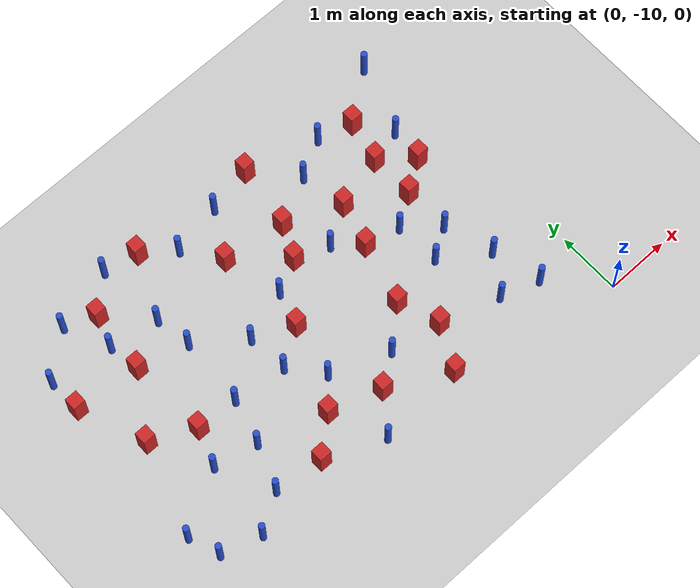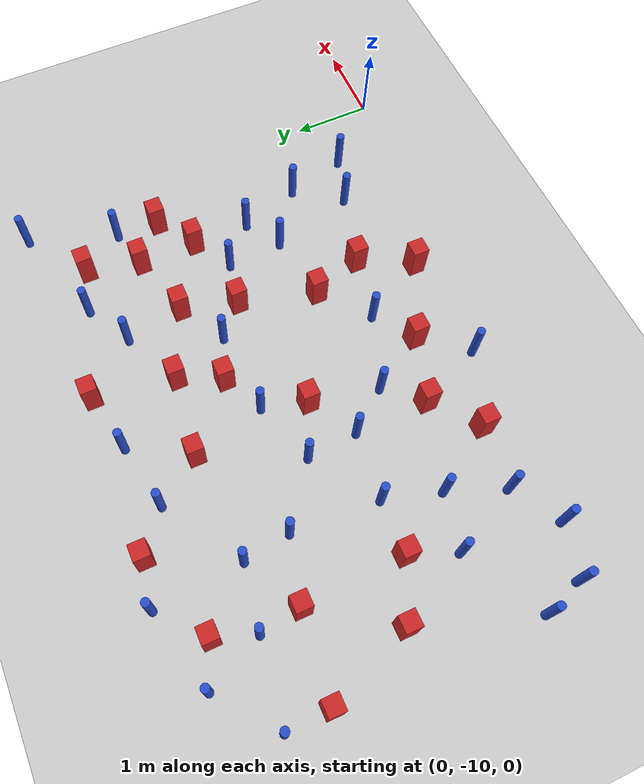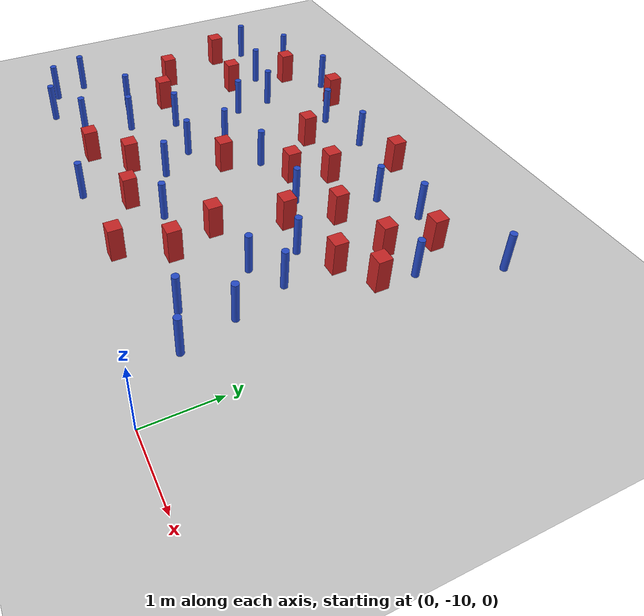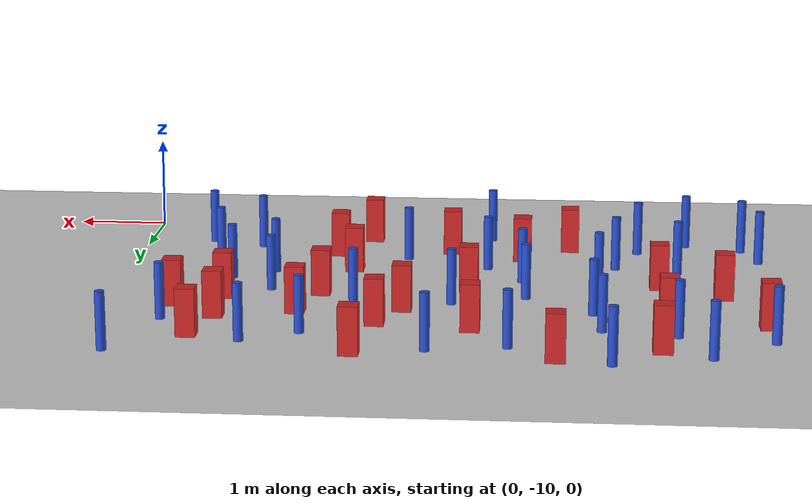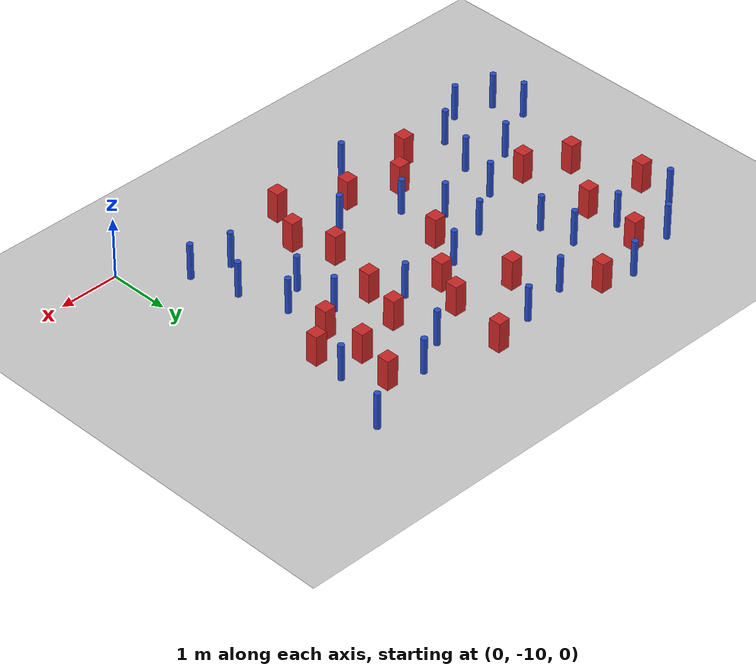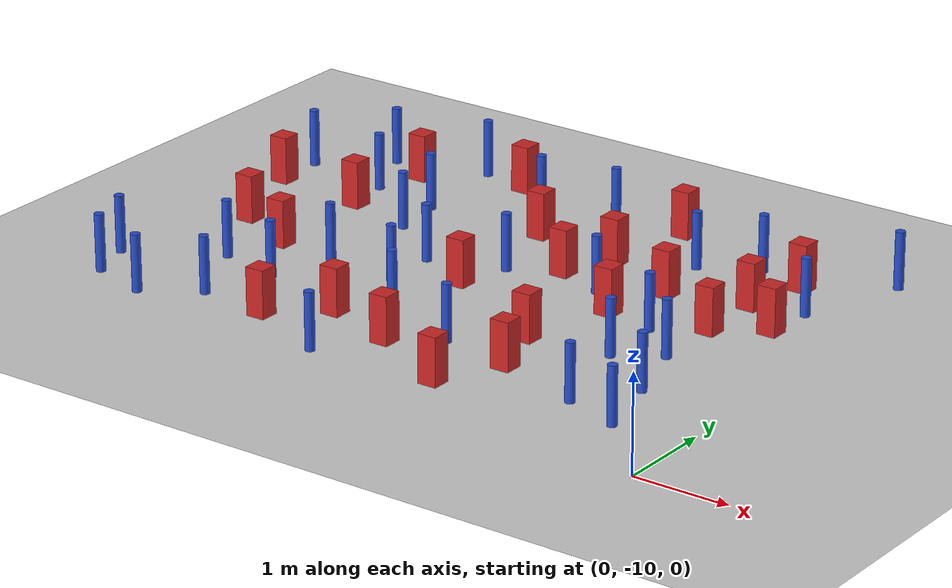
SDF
<sdf version="1.6">
 <world name="default">
  <model name="ground_plane">
   <static>1</static>
   <link name="link">
    <collision name="collision">
     <geometry><plane><normal>0 0 1</normal><size>100 100</size></plane></geometry>
     <surface><friction><ode><mu>100</mu><mu2>50</mu2></ode></friction></surface>
    </collision>
    <visual name="visual">
     <cast_shadows>0</cast_shadows>
     <geometry><plane><normal>0 0 1</normal><size>100 100</size></plane></geometry>
     <material>
      <ambient>1.0 1.0 1.0 1.0</ambient>
      <diffuse>0.8 0.8 0.8 1.0</diffuse>
      <specular>0.01 0.01 0.01 1.000000</specular>
     </material>
    </visual>
   </link>
  </model>
  <model name="pole_obstacle1">
   <static>true</static>
   <pose>-1.18250844846 -7.70387494686 2.88873142074e-08 -9.90536689852e-09 4.60219948989e-07 -1.2096599496e-07</pose>
   <link name="link">
    <pose>0 0 0.3 0 -0 0</pose>
    <inertial>
     <mass>1</mass>
     <inertia><ixx>0.145833</ixx><ixy>0</ixy><ixz>0</ixz><iyy>0.145833</iyy><iyz>0</iyz><izz>0.125</izz></inertia>
    </inertial>
    <collision name="collision">
     <geometry><cylinder><radius>0.05</radius><length>.6</length></cylinder></geometry>
    </collision>
    <visual name="visual">
     <geometry><cylinder><radius>0.05</radius><length>.6</length></cylinder></geometry>
     <material>
      <script><name>Gazebo/Blue</name><uri>file://media/materials/scripts/gazebo.material</uri></script>
     </material>
    </visual>
   </link>
  </model>
  <model name="square_post_obstacle3">
   <static>true</static>
   <pose>-1.03680972441 -5.58593640576 8.22691968438e-08 7.2212513382e-06 -7.54495500217e-07 2.29674213826e-05</pose>
   <link name="link">
    <pose>0 0 0.25 0 -0 0</pose>
    <inertial>
     <mass>100</mass>
     <inertia>
      <ixx>0.166667</ixx>
      <ixy>0</ixy>
      <ixz>0</ixz>
      <iyy>0.166667</iyy>
      <iyz>0</iyz>
      <izz>0.166667</izz>
     </inertia>
    </inertial>
    <collision name="collision"><geometry><box><size>.2 .2 .5</size></box></geometry></collision>
    <visual name="visual">
     <geometry><box><size>.2 .2 .5</size></box></geometry>
     <material>
      <script><name>Gazebo/Red</name><uri>file://media/materials/scripts/gazebo.material</uri></script>
     </material>
    </visual>
   </link>
  </model>
  <model name="pole_obstacle2">
   <static>true</static>
   <pose>-5.35833952986 -8.33656841699 2.88873142074e-08 -9.9053668967e-09 4.60219948993e-07 -1.20965994957e-07</pose>
   <link name="link">
    <pose>0 0 0.3 0 -0 0</pose>
    <inertial>
     <mass>1</mass>
     <inertia><ixx>0.145833</ixx><ixy>0</ixy><ixz>0</ixz><iyy>0.145833</iyy><iyz>0</iyz><izz>0.125</izz></inertia>
    </inertial>
    <collision name="collision">
     <geometry><cylinder><radius>0.05</radius><length>.6</length></cylinder></geometry>
    </collision>
    <visual name="visual">
     <geometry><cylinder><radius>0.05</radius><length>.6</length></cylinder></geometry>
     <material>
      <script><name>Gazebo/Blue</name><uri>file://media/materials/scripts/gazebo.material</uri></script>
     </material>
    </visual>
   </link>
  </model>
  <model name="pole_obstacle5">
   <static>true</static>
   <pose>-1.66406877257 -7.27643636776 2.88873142074e-08 -9.90536689852e-09 4.60219948989e-07 -1.2096599496e-07</pose>
   <link name="link">
    <pose>0 0 0.3 0 -0 0</pose>
    <inertial>
     <mass>1</mass>
     <inertia><ixx>0.145833</ixx><ixy>0</ixy><ixz>0</ixz><iyy>0.145833</iyy><iyz>0</iyz><izz>0.125</izz></inertia>
    </inertial>
    <collision name="collision">
     <geometry><cylinder><radius>0.05</radius><length>.6</length></cylinder></geometry>
    </collision>
    <visual name="visual">
     <geometry><cylinder><radius>0.05</radius><length>.6</length></cylinder></geometry>
     <material>
      <script><name>Gazebo/Blue</name><uri>file://media/materials/scripts/gazebo.material</uri></script>
     </material>
    </visual>
   </link>
  </model>
  <model name="square_post_obstacle16">
   <static>true</static>
   <pose>-4.71330819208 -5.01997671932 8.22691968438e-08 7.2212513382e-06 -7.54495500217e-07 2.29674213826e-05</pose>
   <link name="link">
    <pose>0 0 0.25 0 -0 0</pose>
    <inertial>
     <mass>100</mass>
     <inertia>
      <ixx>0.166667</ixx>
      <ixy>0</ixy>
      <ixz>0</ixz>
      <iyy>0.166667</iyy>
      <iyz>0</iyz>
      <izz>0.166667</izz>
     </inertia>
    </inertial>
    <collision name="collision"><geometry><box><size>.2 .2 .5</size></box></geometry></collision>
    <visual name="visual">
     <geometry><box><size>.2 .2 .5</size></box></geometry>
     <material>
      <script><name>Gazebo/Red</name><uri>file://media/materials/scripts/gazebo.material</uri></script>
     </material>
    </visual>
   </link>
  </model>
  <model name="square_post_obstacle19">
   <static>true</static>
   <pose>-1.20047073616 -6.24779284353 8.22691968438e-08 7.2212513382e-06 -7.54495500217e-07 2.29674213826e-05</pose>
   <link name="link">
    <pose>0 0 0.25 0 -0 0</pose>
    <inertial>
     <mass>100</mass>
     <inertia>
      <ixx>0.166667</ixx>
      <ixy>0</ixy>
      <ixz>0</ixz>
      <iyy>0.166667</iyy>
      <iyz>0</iyz>
      <izz>0.166667</izz>
     </inertia>
    </inertial>
    <collision name="collision"><geometry><box><size>.2 .2 .5</size></box></geometry></collision>
    <visual name="visual">
     <geometry><box><size>.2 .2 .5</size></box></geometry>
     <material>
      <script><name>Gazebo/Red</name><uri>file://media/materials/scripts/gazebo.material</uri></script>
     </material>
    </visual>
   </link>
  </model>
  <model name="square_post_obstacle20">
   <static>true</static>
   <pose>-5.80783486104 -7.61061813512 8.22691968438e-08 7.22125133819e-06 -7.54495500217e-07 2.29674213826e-05</pose>
   <link name="link">
    <pose>0 0 0.25 0 -0 0</pose>
    <inertial>
     <mass>100</mass>
     <inertia>
      <ixx>0.166667</ixx>
      <ixy>0</ixy>
      <ixz>0</ixz>
      <iyy>0.166667</iyy>
      <iyz>0</iyz>
      <izz>0.166667</izz>
     </inertia>
    </inertial>
    <collision name="collision"><geometry><box><size>.2 .2 .5</size></box></geometry></collision>
    <visual name="visual">
     <geometry><box><size>.2 .2 .5</size></box></geometry>
     <material>
      <script><name>Gazebo/Red</name><uri>file://media/materials/scripts/gazebo.material</uri></script>
     </material>
    </visual>
   </link>
  </model>
  <model name="square_post_obstacle27">
   <static>true</static>
   <pose>-2.2161021333 -7.15034181446 8.22691968438e-08 7.2212513382e-06 -7.54495500217e-07 2.29674213826e-05</pose>
   <link name="link">
    <pose>0 0 0.25 0 -0 0</pose>
    <inertial>
     <mass>100</mass>
     <inertia>
      <ixx>0.166667</ixx>
      <ixy>0</ixy>
      <ixz>0</ixz>
      <iyy>0.166667</iyy>
      <iyz>0</iyz>
      <izz>0.166667</izz>
     </inertia>
    </inertial>
    <collision name="collision"><geometry><box><size>.2 .2 .5</size></box></geometry></collision>
    <visual name="visual">
     <geometry><box><size>.2 .2 .5</size></box></geometry>
     <material>
      <script><name>Gazebo/Red</name><uri>file://media/materials/scripts/gazebo.material</uri></script>
     </material>
    </visual>
   </link>
  </model>
  <model name="pole_obstacle28">
   <static>true</static>
   <pose>-3.44101071613 -5.23831366577 2.88873142074e-08 -9.90536689859e-09 4.60219948989e-07 -1.20965994961e-07</pose>
   <link name="link">
    <pose>0 0 0.3 0 -0 0</pose>
    <inertial>
     <mass>1</mass>
     <inertia><ixx>0.145833</ixx><ixy>0</ixy><ixz>0</ixz><iyy>0.145833</iyy><iyz>0</iyz><izz>0.125</izz></inertia>
    </inertial>
    <collision name="collision">
     <geometry><cylinder><radius>0.05</radius><length>.6</length></cylinder></geometry>
    </collision>
    <visual name="visual">
     <geometry><cylinder><radius>0.05</radius><length>.6</length></cylinder></geometry>
     <material>
      <script><name>Gazebo/Blue</name><uri>file://media/materials/scripts/gazebo.material</uri></script>
     </material>
    </visual>
   </link>
  </model>
  <model name="pole_obstacle32">
   <static>true</static>
   <pose>-0.292960993076 -5.03104009301 2.88873142074e-08 -9.90536689618e-09 4.60219948994e-07 -1.20965994956e-07</pose>
   <link name="link">
    <pose>0 0 0.3 0 -0 0</pose>
    <inertial>
     <mass>1</mass>
     <inertia><ixx>0.145833</ixx><ixy>0</ixy><ixz>0</ixz><iyy>0.145833</iyy><iyz>0</iyz><izz>0.125</izz></inertia>
    </inertial>
    <collision name="collision">
     <geometry><cylinder><radius>0.05</radius><length>.6</length></cylinder></geometry>
    </collision>
    <visual name="visual">
     <geometry><cylinder><radius>0.05</radius><length>.6</length></cylinder></geometry>
     <material>
      <script><name>Gazebo/Blue</name><uri>file://media/materials/scripts/gazebo.material</uri></script>
     </material>
    </visual>
   </link>
  </model>
  <model name="square_post_obstacle37">
   <static>true</static>
   <pose>-4.85473107737 -9.11008696046 8.22691968438e-08 7.22125133819e-06 -7.54495500217e-07 2.29674213826e-05</pose>
   <link name="link">
    <pose>0 0 0.25 0 -0 0</pose>
    <inertial>
     <mass>100</mass>
     <inertia>
      <ixx>0.166667</ixx>
      <ixy>0</ixy>
      <ixz>0</ixz>
      <iyy>0.166667</iyy>
      <iyz>0</iyz>
      <izz>0.166667</izz>
     </inertia>
    </inertial>
    <collision name="collision"><geometry><box><size>.2 .2 .5</size></box></geometry></collision>
    <visual name="visual">
     <geometry><box><size>.2 .2 .5</size></box></geometry>
     <material>
      <script><name>Gazebo/Red</name><uri>file://media/materials/scripts/gazebo.material</uri></script>
     </material>
    </visual>
   </link>
  </model>
  <model name="square_post_obstacle39">
   <static>true</static>
   <pose>-2.59815745295 -9.41556099096 8.22691968438e-08 7.22125133819e-06 -7.54495500217e-07 2.29674213826e-05</pose>
   <link name="link">
    <pose>0 0 0.25 0 -0 0</pose>
    <inertial>
     <mass>100</mass>
     <inertia>
      <ixx>0.166667</ixx>
      <ixy>0</ixy>
      <ixz>0</ixz>
      <iyy>0.166667</iyy>
      <iyz>0</iyz>
      <izz>0.166667</izz>
     </inertia>
    </inertial>
    <collision name="collision"><geometry><box><size>.2 .2 .5</size></box></geometry></collision>
    <visual name="visual">
     <geometry><box><size>.2 .2 .5</size></box></geometry>
     <material>
      <script><name>Gazebo/Red</name><uri>file://media/materials/scripts/gazebo.material</uri></script>
     </material>
    </visual>
   </link>
  </model>
  <model name="square_post_obstacle45">
   <static>true</static>
   <pose>-2.26393041456 -8.75168600667 8.22691968438e-08 7.22125133819e-06 -7.54495500217e-07 2.29674213826e-05</pose>
   <link name="link">
    <pose>0 0 0.25 0 -0 0</pose>
    <inertial>
     <mass>100</mass>
     <inertia>
      <ixx>0.166667</ixx>
      <ixy>0</ixy>
      <ixz>0</ixz>
      <iyy>0.166667</iyy>
      <iyz>0</iyz>
      <izz>0.166667</izz>
     </inertia>
    </inertial>
    <collision name="collision"><geometry><box><size>.2 .2 .5</size></box></geometry></collision>
    <visual name="visual">
     <geometry><box><size>.2 .2 .5</size></box></geometry>
     <material>
      <script><name>Gazebo/Red</name><uri>file://media/materials/scripts/gazebo.material</uri></script>
     </material>
    </visual>
   </link>
  </model>
  <model name="square_post_obstacle54">
   <static>true</static>
   <pose>-3.52671387951 -8.92941724615 8.22691968438e-08 7.22125133819e-06 -7.54495500217e-07 2.29674213826e-05</pose>
   <link name="link">
    <pose>0 0 0.25 0 -0 0</pose>
    <inertial>
     <mass>100</mass>
     <inertia>
      <ixx>0.166667</ixx>
      <ixy>0</ixy>
      <ixz>0</ixz>
      <iyy>0.166667</iyy>
      <iyz>0</iyz>
      <izz>0.166667</izz>
     </inertia>
    </inertial>
    <collision name="collision"><geometry><box><size>.2 .2 .5</size></box></geometry></collision>
    <visual name="visual">
     <geometry><box><size>.2 .2 .5</size></box></geometry>
     <material>
      <script><name>Gazebo/Red</name><uri>file://media/materials/scripts/gazebo.material</uri></script>
     </material>
    </visual>
   </link>
  </model>
  <model name="pole_obstacle52">
   <static>true</static>
   <pose>-3.04835141107 -8.60038821178 2.88873142074e-08 -9.9053668994e-09 4.60219948987e-07 -1.20965994963e-07</pose>
   <link name="link">
    <pose>0 0 0.3 0 -0 0</pose>
    <inertial>
     <mass>1</mass>
     <inertia><ixx>0.145833</ixx><ixy>0</ixy><ixz>0</ixz><iyy>0.145833</iyy><iyz>0</iyz><izz>0.125</izz></inertia>
    </inertial>
    <collision name="collision">
     <geometry><cylinder><radius>0.05</radius><length>.6</length></cylinder></geometry>
    </collision>
    <visual name="visual">
     <geometry><cylinder><radius>0.05</radius><length>.6</length></cylinder></geometry>
     <material>
      <script><name>Gazebo/Blue</name><uri>file://media/materials/scripts/gazebo.material</uri></script>
     </material>
    </visual>
   </link>
  </model>
  <model name="square_post_obstacle61">
   <static>true</static>
   <pose>-6.86570901039 -6.23992069179 8.22691968438e-08 7.22125133819e-06 -7.54495500217e-07 2.29674213826e-05</pose>
   <link name="link">
    <pose>0 0 0.25 0 -0 0</pose>
    <inertial>
     <mass>100</mass>
     <inertia>
      <ixx>0.166667</ixx>
      <ixy>0</ixy>
      <ixz>0</ixz>
      <iyy>0.166667</iyy>
      <iyz>0</iyz>
      <izz>0.166667</izz>
     </inertia>
    </inertial>
    <collision name="collision"><geometry><box><size>.2 .2 .5</size></box></geometry></collision>
    <visual name="visual">
     <geometry><box><size>.2 .2 .5</size></box></geometry>
     <material>
      <script><name>Gazebo/Red</name><uri>file://media/materials/scripts/gazebo.material</uri></script>
     </material>
    </visual>
   </link>
  </model>
  <model name="pole_obstacle77">
   <static>true</static>
   <pose>-4.39026461238 -7.1158846359 2.88873142074e-08 -9.90536690842e-09 4.60219948965e-07 -1.20965994976e-07</pose>
   <link name="link">
    <pose>0 0 0.3 0 -0 0</pose>
    <inertial>
     <mass>1</mass>
     <inertia><ixx>0.145833</ixx><ixy>0</ixy><ixz>0</ixz><iyy>0.145833</iyy><iyz>0</iyz><izz>0.125</izz></inertia>
    </inertial>
    <collision name="collision">
     <geometry><cylinder><radius>0.05</radius><length>.6</length></cylinder></geometry>
    </collision>
    <visual name="visual">
     <geometry><cylinder><radius>0.05</radius><length>.6</length></cylinder></geometry>
     <material>
      <script><name>Gazebo/Blue</name><uri>file://media/materials/scripts/gazebo.material</uri></script>
     </material>
    </visual>
   </link>
  </model>
  <model name="pole_obstacle94">
   <static>true</static>
   <pose>-5.62100089339 -9.0195225706 2.88873142074e-08 -9.9053668967e-09 4.60219948993e-07 -1.20965994957e-07</pose>
   <link name="link">
    <pose>0 0 0.3 0 -0 0</pose>
    <inertial>
     <mass>1</mass>
     <inertia><ixx>0.145833</ixx><ixy>0</ixy><ixz>0</ixz><iyy>0.145833</iyy><iyz>0</iyz><izz>0.125</izz></inertia>
    </inertial>
    <collision name="collision">
     <geometry><cylinder><radius>0.05</radius><length>.6</length></cylinder></geometry>
    </collision>
    <visual name="visual">
     <geometry><cylinder><radius>0.05</radius><length>.6</length></cylinder></geometry>
     <material>
      <script><name>Gazebo/Blue</name><uri>file://media/materials/scripts/gazebo.material</uri></script>
     </material>
    </visual>
   </link>
  </model>
  <model name="pole_obstacle98">
   <static>true</static>
   <pose>-1.58052555916 -5.42955902011 2.88873142074e-08 -9.90536689852e-09 4.60219948989e-07 -1.2096599496e-07</pose>
   <link name="link">
    <pose>0 0 0.3 0 -0 0</pose>
    <inertial>
     <mass>1</mass>
     <inertia><ixx>0.145833</ixx><ixy>0</ixy><ixz>0</ixz><iyy>0.145833</iyy><iyz>0</iyz><izz>0.125</izz></inertia>
    </inertial>
    <collision name="collision">
     <geometry><cylinder><radius>0.05</radius><length>.6</length></cylinder></geometry>
    </collision>
    <visual name="visual">
     <geometry><cylinder><radius>0.05</radius><length>.6</length></cylinder></geometry>
     <material>
      <script><name>Gazebo/Blue</name><uri>file://media/materials/scripts/gazebo.material</uri></script>
     </material>
    </visual>
   </link>
  </model>
  <model name="pole_obstacle100">
   <static>true</static>
   <pose>-4.24383951142 -5.39093647528 2.88873142074e-08 -9.90536690842e-09 4.60219948965e-07 -1.20965994976e-07</pose>
   <link name="link">
    <pose>0 0 0.3 0 -0 0</pose>
    <inertial>
     <mass>1</mass>
     <inertia><ixx>0.145833</ixx><ixy>0</ixy><ixz>0</ixz><iyy>0.145833</iyy><iyz>0</iyz><izz>0.125</izz></inertia>
    </inertial>
    <collision name="collision">
     <geometry><cylinder><radius>0.05</radius><length>.6</length></cylinder></geometry>
    </collision>
    <visual name="visual">
     <geometry><cylinder><radius>0.05</radius><length>.6</length></cylinder></geometry>
     <material>
      <script><name>Gazebo/Blue</name><uri>file://media/materials/scripts/gazebo.material</uri></script>
     </material>
    </visual>
   </link>
  </model>
  <model name="pole_obstacle105">
   <static>true</static>
   <pose>-3.61673306404 -6.86107048801 2.88873142074e-08 -9.90536692062e-09 4.60219948937e-07 -1.20965994985e-07</pose>
   <link name="link">
    <pose>0 0 0.3 0 -0 0</pose>
    <inertial>
     <mass>1</mass>
     <inertia><ixx>0.145833</ixx><ixy>0</ixy><ixz>0</ixz><iyy>0.145833</iyy><iyz>0</iyz><izz>0.125</izz></inertia>
    </inertial>
    <collision name="collision">
     <geometry><cylinder><radius>0.05</radius><length>.6</length></cylinder></geometry>
    </collision>
    <visual name="visual">
     <geometry><cylinder><radius>0.05</radius><length>.6</length></cylinder></geometry>
     <material>
      <script><name>Gazebo/Blue</name><uri>file://media/materials/scripts/gazebo.material</uri></script>
     </material>
    </visual>
   </link>
  </model>
  <model name="square_post_obstacle94">
   <static>true</static>
   <pose>-2.0203740285 -6.46726550421 8.22691968438e-08 7.22125133819e-06 -7.54495500217e-07 2.29674213826e-05</pose>
   <link name="link">
    <pose>0 0 0.25 0 -0 0</pose>
    <inertial>
     <mass>100</mass>
     <inertia>
      <ixx>0.166667</ixx>
      <ixy>0</ixy>
      <ixz>0</ixz>
      <iyy>0.166667</iyy>
      <iyz>0</iyz>
      <izz>0.166667</izz>
     </inertia>
    </inertial>
    <collision name="collision"><geometry><box><size>.2 .2 .5</size></box></geometry></collision>
    <visual name="visual">
     <geometry><box><size>.2 .2 .5</size></box></geometry>
     <material>
      <script><name>Gazebo/Red</name><uri>file://media/materials/scripts/gazebo.material</uri></script>
     </material>
    </visual>
   </link>
  </model>
  <model name="square_post_obstacle102">
   <static>true</static>
   <pose>-4.3223314083 -8.66030648608 8.22691968438e-08 7.22125133819e-06 -7.54495500217e-07 2.29674213826e-05</pose>
   <link name="link">
    <pose>0 0 0.25 0 -0 0</pose>
    <inertial>
     <mass>100</mass>
     <inertia>
      <ixx>0.166667</ixx>
      <ixy>0</ixy>
      <ixz>0</ixz>
      <iyy>0.166667</iyy>
      <iyz>0</iyz>
      <izz>0.166667</izz>
     </inertia>
    </inertial>
    <collision name="collision"><geometry><box><size>.2 .2 .5</size></box></geometry></collision>
    <visual name="visual">
     <geometry><box><size>.2 .2 .5</size></box></geometry>
     <material>
      <script><name>Gazebo/Red</name><uri>file://media/materials/scripts/gazebo.material</uri></script>
     </material>
    </visual>
   </link>
  </model>
  <model name="pole_obstacle116">
   <static>true</static>
   <pose>-5.93351952888 -5.85717617749 2.88873142074e-08 -9.90536690842e-09 4.60219948965e-07 -1.20965994976e-07</pose>
   <link name="link">
    <pose>0 0 0.3 0 -0 0</pose>
    <inertial>
     <mass>1</mass>
     <inertia><ixx>0.145833</ixx><ixy>0</ixy><ixz>0</ixz><iyy>0.145833</iyy><iyz>0</iyz><izz>0.125</izz></inertia>
    </inertial>
    <collision name="collision">
     <geometry><cylinder><radius>0.05</radius><length>.6</length></cylinder></geometry>
    </collision>
    <visual name="visual">
     <geometry><cylinder><radius>0.05</radius><length>.6</length></cylinder></geometry>
     <material>
      <script><name>Gazebo/Blue</name><uri>file://media/materials/scripts/gazebo.material</uri></script>
     </material>
    </visual>
   </link>
  </model>
  <model name="pole_obstacle134">
   <static>true</static>
   <pose>-6.02915985386 -8.17836936248 2.88873142074e-08 -9.9053668967e-09 4.60219948993e-07 -1.20965994957e-07</pose>
   <link name="link">
    <pose>0 0 0.3 0 -0 0</pose>
    <inertial>
     <mass>1</mass>
     <inertia><ixx>0.145833</ixx><ixy>0</ixy><ixz>0</ixz><iyy>0.145833</iyy><iyz>0</iyz><izz>0.125</izz></inertia>
    </inertial>
    <collision name="collision">
     <geometry><cylinder><radius>0.05</radius><length>.6</length></cylinder></geometry>
    </collision>
    <visual name="visual">
     <geometry><cylinder><radius>0.05</radius><length>.6</length></cylinder></geometry>
     <material>
      <script><name>Gazebo/Blue</name><uri>file://media/materials/scripts/gazebo.material</uri></script>
     </material>
    </visual>
   </link>
  </model>
  <model name="pole_obstacle135">
   <static>true</static>
   <pose>-0.669329192002 -6.1165043772 2.88873142074e-08 -9.90536689661e-09 4.60219948993e-07 -1.20965994957e-07</pose>
   <link name="link">
    <pose>0 0 0.3 0 -0 0</pose>
    <inertial>
     <mass>1</mass>
     <inertia><ixx>0.145833</ixx><ixy>0</ixy><ixz>0</ixz><iyy>0.145833</iyy><iyz>0</iyz><izz>0.125</izz></inertia>
    </inertial>
    <collision name="collision">
     <geometry><cylinder><radius>0.05</radius><length>.6</length></cylinder></geometry>
    </collision>
    <visual name="visual">
     <geometry><cylinder><radius>0.05</radius><length>.6</length></cylinder></geometry>
     <material>
      <script><name>Gazebo/Blue</name><uri>file://media/materials/scripts/gazebo.material</uri></script>
     </material>
    </visual>
   </link>
  </model>
  <model name="pole_obstacle137">
   <static>true</static>
   <pose>-0.93943252531 -8.466590241 2.88873142074e-08 -9.90536690779e-09 4.60219948967e-07 -1.20965994975e-07</pose>
   <link name="link">
    <pose>0 0 0.3 0 -0 0</pose>
    <inertial>
     <mass>1</mass>
     <inertia><ixx>0.145833</ixx><ixy>0</ixy><ixz>0</ixz><iyy>0.145833</iyy><iyz>0</iyz><izz>0.125</izz></inertia>
    </inertial>
    <collision name="collision">
     <geometry><cylinder><radius>0.05</radius><length>.6</length></cylinder></geometry>
    </collision>
    <visual name="visual">
     <geometry><cylinder><radius>0.05</radius><length>.6</length></cylinder></geometry>
     <material>
      <script><name>Gazebo/Blue</name><uri>file://media/materials/scripts/gazebo.material</uri></script>
     </material>
    </visual>
   </link>
  </model>
  <model name="square_post_obstacle121">
   <static>true</static>
   <pose>-5.85616386731 -6.35447585659 8.22691968438e-08 7.22125133819e-06 -7.54495500217e-07 2.29674213826e-05</pose>
   <link name="link">
    <pose>0 0 0.25 0 -0 0</pose>
    <inertial>
     <mass>100</mass>
     <inertia>
      <ixx>0.166667</ixx>
      <ixy>0</ixy>
      <ixz>0</ixz>
      <iyy>0.166667</iyy>
      <iyz>0</iyz>
      <izz>0.166667</izz>
     </inertia>
    </inertial>
    <collision name="collision"><geometry><box><size>.2 .2 .5</size></box></geometry></collision>
    <visual name="visual">
     <geometry><box><size>.2 .2 .5</size></box></geometry>
     <material>
      <script><name>Gazebo/Red</name><uri>file://media/materials/scripts/gazebo.material</uri></script>
     </material>
    </visual>
   </link>
  </model>
  <model name="square_post_obstacle125">
   <static>true</static>
   <pose>-2.87408580456 -6.09242757065 8.22691968438e-08 7.2212513382e-06 -7.54495500217e-07 2.29674213826e-05</pose>
   <link name="link">
    <pose>0 0 0.25 0 -0 0</pose>
    <inertial>
     <mass>100</mass>
     <inertia>
      <ixx>0.166667</ixx>
      <ixy>0</ixy>
      <ixz>0</ixz>
      <iyy>0.166667</iyy>
      <iyz>0</iyz>
      <izz>0.166667</izz>
     </inertia>
    </inertial>
    <collision name="collision"><geometry><box><size>.2 .2 .5</size></box></geometry></collision>
    <visual name="visual">
     <geometry><box><size>.2 .2 .5</size></box></geometry>
     <material>
      <script><name>Gazebo/Red</name><uri>file://media/materials/scripts/gazebo.material</uri></script>
     </material>
    </visual>
   </link>
  </model>
  <model name="pole_obstacle141">
   <static>true</static>
   <pose>-6.88763089673 -5.71167507039 2.88873142074e-08 -9.90536690842e-09 4.60219948965e-07 -1.20965994976e-07</pose>
   <link name="link">
    <pose>0 0 0.3 0 -0 0</pose>
    <inertial>
     <mass>1</mass>
     <inertia><ixx>0.145833</ixx><ixy>0</ixy><ixz>0</ixz><iyy>0.145833</iyy><iyz>0</iyz><izz>0.125</izz></inertia>
    </inertial>
    <collision name="collision">
     <geometry><cylinder><radius>0.05</radius><length>.6</length></cylinder></geometry>
    </collision>
    <visual name="visual">
     <geometry><cylinder><radius>0.05</radius><length>.6</length></cylinder></geometry>
     <material>
      <script><name>Gazebo/Blue</name><uri>file://media/materials/scripts/gazebo.material</uri></script>
     </material>
    </visual>
   </link>
  </model>
  <model name="square_post_obstacle126">
   <static>true</static>
   <pose>-6.47490660178 -7.27504237418 8.22691968438e-08 7.2212513382e-06 -7.54495500217e-07 2.29674213826e-05</pose>
   <link name="link">
    <pose>0 0 0.25 0 -0 0</pose>
    <inertial>
     <mass>100</mass>
     <inertia>
      <ixx>0.166667</ixx>
      <ixy>0</ixy>
      <ixz>0</ixz>
      <iyy>0.166667</iyy>
      <iyz>0</iyz>
      <izz>0.166667</izz>
     </inertia>
    </inertial>
    <collision name="collision"><geometry><box><size>.2 .2 .5</size></box></geometry></collision>
    <visual name="visual">
     <geometry><box><size>.2 .2 .5</size></box></geometry>
     <material>
      <script><name>Gazebo/Red</name><uri>file://media/materials/scripts/gazebo.material</uri></script>
     </material>
    </visual>
   </link>
  </model>
  <model name="square_post_obstacle130">
   <static>true</static>
   <pose>-3.8520166409 -5.95211892557 8.22691968438e-08 7.2212513382e-06 -7.54495500217e-07 2.29674213826e-05</pose>
   <link name="link">
    <pose>0 0 0.25 0 -0 0</pose>
    <inertial>
     <mass>100</mass>
     <inertia>
      <ixx>0.166667</ixx>
      <ixy>0</ixy>
      <ixz>0</ixz>
      <iyy>0.166667</iyy>
      <iyz>0</iyz>
      <izz>0.166667</izz>
     </inertia>
    </inertial>
    <collision name="collision"><geometry><box><size>.2 .2 .5</size></box></geometry></collision>
    <visual name="visual">
     <geometry><box><size>.2 .2 .5</size></box></geometry>
     <material>
      <script><name>Gazebo/Red</name><uri>file://media/materials/scripts/gazebo.material</uri></script>
     </material>
    </visual>
   </link>
  </model>
  <model name="pole_obstacle148">
   <static>true</static>
   <pose>-2.14834037256 -5.74119926409 2.88873142074e-08 -9.90536689859e-09 4.60219948989e-07 -1.20965994961e-07</pose>
   <link name="link">
    <pose>0 0 0.3 0 -0 0</pose>
    <inertial>
     <mass>1</mass>
     <inertia><ixx>0.145833</ixx><ixy>0</ixy><ixz>0</ixz><iyy>0.145833</iyy><iyz>0</iyz><izz>0.125</izz></inertia>
    </inertial>
    <collision name="collision">
     <geometry><cylinder><radius>0.05</radius><length>.6</length></cylinder></geometry>
    </collision>
    <visual name="visual">
     <geometry><cylinder><radius>0.05</radius><length>.6</length></cylinder></geometry>
     <material>
      <script><name>Gazebo/Blue</name><uri>file://media/materials/scripts/gazebo.material</uri></script>
     </material>
    </visual>
   </link>
  </model>
  <model name="square_post_obstacle137">
   <static>true</static>
   <pose>-0.712194727618 -6.64512989075 8.22691968438e-08 7.2212513382e-06 -7.54495500217e-07 2.29674213826e-05</pose>
   <link name="link">
    <pose>0 0 0.25 0 -0 0</pose>
    <inertial>
     <mass>100</mass>
     <inertia>
      <ixx>0.166667</ixx>
      <ixy>0</ixy>
      <ixz>0</ixz>
      <iyy>0.166667</iyy>
      <iyz>0</iyz>
      <izz>0.166667</izz>
     </inertia>
    </inertial>
    <collision name="collision"><geometry><box><size>.2 .2 .5</size></box></geometry></collision>
    <visual name="visual">
     <geometry><box><size>.2 .2 .5</size></box></geometry>
     <material>
      <script><name>Gazebo/Red</name><uri>file://media/materials/scripts/gazebo.material</uri></script>
     </material>
    </visual>
   </link>
  </model>
  <model name="square_post_obstacle142">
   <static>true</static>
   <pose>-2.71084903603 -5.09745512023 8.22691968438e-08 7.22125133819e-06 -7.54495500217e-07 2.29674213826e-05</pose>
   <link name="link">
    <pose>0 0 0.25 0 -0 0</pose>
    <inertial>
     <mass>100</mass>
     <inertia>
      <ixx>0.166667</ixx>
      <ixy>0</ixy>
      <ixz>0</ixz>
      <iyy>0.166667</iyy>
      <iyz>0</iyz>
      <izz>0.166667</izz>
     </inertia>
    </inertial>
    <collision name="collision"><geometry><box><size>.2 .2 .5</size></box></geometry></collision>
    <visual name="visual">
     <geometry><box><size>.2 .2 .5</size></box></geometry>
     <material>
      <script><name>Gazebo/Red</name><uri>file://media/materials/scripts/gazebo.material</uri></script>
     </material>
    </visual>
   </link>
  </model>
  <model name="pole_obstacle156">
   <static>true</static>
   <pose>-5.09368965708 -6.56874801402 2.88873142074e-08 -9.90536690842e-09 4.60219948965e-07 -1.20965994976e-07</pose>
   <link name="link">
    <pose>0 0 0.3 0 -0 0</pose>
    <inertial>
     <mass>1</mass>
     <inertia><ixx>0.145833</ixx><ixy>0</ixy><ixz>0</ixz><iyy>0.145833</iyy><iyz>0</iyz><izz>0.125</izz></inertia>
    </inertial>
    <collision name="collision">
     <geometry><cylinder><radius>0.05</radius><length>.6</length></cylinder></geometry>
    </collision>
    <visual name="visual">
     <geometry><cylinder><radius>0.05</radius><length>.6</length></cylinder></geometry>
     <material>
      <script><name>Gazebo/Blue</name><uri>file://media/materials/scripts/gazebo.material</uri></script>
     </material>
    </visual>
   </link>
  </model>
  <model name="pole_obstacle162">
   <static>true</static>
   <pose>-2.5899469931 -6.80921808196 2.88873142074e-08 -9.90536689859e-09 4.60219948989e-07 -1.20965994961e-07</pose>
   <link name="link">
    <pose>0 0 0.3 0 -0 0</pose>
    <inertial>
     <mass>1</mass>
     <inertia><ixx>0.145833</ixx><ixy>0</ixy><ixz>0</ixz><iyy>0.145833</iyy><iyz>0</iyz><izz>0.125</izz></inertia>
    </inertial>
    <collision name="collision">
     <geometry><cylinder><radius>0.05</radius><length>.6</length></cylinder></geometry>
    </collision>
    <visual name="visual">
     <geometry><cylinder><radius>0.05</radius><length>.6</length></cylinder></geometry>
     <material>
      <script><name>Gazebo/Blue</name><uri>file://media/materials/scripts/gazebo.material</uri></script>
     </material>
    </visual>
   </link>
  </model>
  <model name="square_post_obstacle156">
   <static>true</static>
   <pose>-5.75616806853 -5.3699179872 8.22691968438e-08 7.22125133819e-06 -7.54495500217e-07 2.29674213826e-05</pose>
   <link name="link">
    <pose>0 0 0.25 0 -0 0</pose>
    <inertial>
     <mass>100</mass>
     <inertia>
      <ixx>0.166667</ixx>
      <ixy>0</ixy>
      <ixz>0</ixz>
      <iyy>0.166667</iyy>
      <iyz>0</iyz>
      <izz>0.166667</izz>
     </inertia>
    </inertial>
    <collision name="collision"><geometry><box><size>.2 .2 .5</size></box></geometry></collision>
    <visual name="visual">
     <geometry><box><size>.2 .2 .5</size></box></geometry>
     <material>
      <script><name>Gazebo/Red</name><uri>file://media/materials/scripts/gazebo.material</uri></script>
     </material>
    </visual>
   </link>
  </model>
  <model name="pole_obstacle170">
   <static>true</static>
   <pose>-3.95036428207 -8.24973161862 2.88873142074e-08 -9.90536689889e-09 4.60219948988e-07 -1.2096599496e-07</pose>
   <link name="link">
    <pose>0 0 0.3 0 -0 0</pose>
    <inertial>
     <mass>1</mass>
     <inertia><ixx>0.145833</ixx><ixy>0</ixy><ixz>0</ixz><iyy>0.145833</iyy><iyz>0</iyz><izz>0.125</izz></inertia>
    </inertial>
    <collision name="collision">
     <geometry><cylinder><radius>0.05</radius><length>.6</length></cylinder></geometry>
    </collision>
    <visual name="visual">
     <geometry><cylinder><radius>0.05</radius><length>.6</length></cylinder></geometry>
     <material>
      <script><name>Gazebo/Blue</name><uri>file://media/materials/scripts/gazebo.material</uri></script>
     </material>
    </visual>
   </link>
  </model>
  <model name="pole_obstacle171">
   <static>true</static>
   <pose>-1.62067286298 -7.9842081226 2.88873142074e-08 -9.90536690256e-09 4.60219948979e-07 -1.20965994967e-07</pose>
   <link name="link">
    <pose>0 0 0.3 0 -0 0</pose>
    <inertial>
     <mass>1</mass>
     <inertia><ixx>0.145833</ixx><ixy>0</ixy><ixz>0</ixz><iyy>0.145833</iyy><iyz>0</iyz><izz>0.125</izz></inertia>
    </inertial>
    <collision name="collision">
     <geometry><cylinder><radius>0.05</radius><length>.6</length></cylinder></geometry>
    </collision>
    <visual name="visual">
     <geometry><cylinder><radius>0.05</radius><length>.6</length></cylinder></geometry>
     <material>
      <script><name>Gazebo/Blue</name><uri>file://media/materials/scripts/gazebo.material</uri></script>
     </material>
    </visual>
   </link>
  </model>
  <model name="pole_obstacle173">
   <static>true</static>
   <pose>-1.33577755118 -9.04040307735 2.88873142074e-08 -9.90536690474e-09 4.60219948974e-07 -1.2096599497e-07</pose>
   <link name="link">
    <pose>0 0 0.3 0 -0 0</pose>
    <inertial>
     <mass>1</mass>
     <inertia><ixx>0.145833</ixx><ixy>0</ixy><ixz>0</ixz><iyy>0.145833</iyy><iyz>0</iyz><izz>0.125</izz></inertia>
    </inertial>
    <collision name="collision">
     <geometry><cylinder><radius>0.05</radius><length>.6</length></cylinder></geometry>
    </collision>
    <visual name="visual">
     <geometry><cylinder><radius>0.05</radius><length>.6</length></cylinder></geometry>
     <material>
      <script><name>Gazebo/Blue</name><uri>file://media/materials/scripts/gazebo.material</uri></script>
     </material>
    </visual>
   </link>
  </model>
  <model name="pole_obstacle176">
   <static>true</static>
   <pose>-5.16221903737 -7.64757671444 2.88873142074e-08 -9.90536690842e-09 4.60219948965e-07 -1.20965994976e-07</pose>
   <link name="link">
    <pose>0 0 0.3 0 -0 0</pose>
    <inertial>
     <mass>1</mass>
     <inertia><ixx>0.145833</ixx><ixy>0</ixy><ixz>0</ixz><iyy>0.145833</iyy><iyz>0</iyz><izz>0.125</izz></inertia>
    </inertial>
    <collision name="collision">
     <geometry><cylinder><radius>0.05</radius><length>.6</length></cylinder></geometry>
    </collision>
    <visual name="visual">
     <geometry><cylinder><radius>0.05</radius><length>.6</length></cylinder></geometry>
     <material>
      <script><name>Gazebo/Blue</name><uri>file://media/materials/scripts/gazebo.material</uri></script>
     </material>
    </visual>
   </link>
  </model>
  <model name="pole_obstacle180">
   <static>true</static>
   <pose>-5.17564150307 -5.99486107443 2.88873142074e-08 -9.90536690842e-09 4.60219948965e-07 -1.20965994976e-07</pose>
   <link name="link">
    <pose>0 0 0.3 0 -0 0</pose>
    <inertial>
     <mass>1</mass>
     <inertia><ixx>0.145833</ixx><ixy>0</ixy><ixz>0</ixz><iyy>0.145833</iyy><iyz>0</iyz><izz>0.125</izz></inertia>
    </inertial>
    <collision name="collision">
     <geometry><cylinder><radius>0.05</radius><length>.6</length></cylinder></geometry>
    </collision>
    <visual name="visual">
     <geometry><cylinder><radius>0.05</radius><length>.6</length></cylinder></geometry>
     <material>
      <script><name>Gazebo/Blue</name><uri>file://media/materials/scripts/gazebo.material</uri></script>
     </material>
    </visual>
   </link>
  </model>
  <model name="pole_obstacle185">
   <static>true</static>
   <pose>-6.7973979738 -9.17983104054 2.88873142074e-08 -9.9053668967e-09 4.60219948993e-07 -1.20965994957e-07</pose>
   <link name="link">
    <pose>0 0 0.3 0 -0 0</pose>
    <inertial>
     <mass>1</mass>
     <inertia><ixx>0.145833</ixx><ixy>0</ixy><ixz>0</ixz><iyy>0.145833</iyy><iyz>0</iyz><izz>0.125</izz></inertia>
    </inertial>
    <collision name="collision">
     <geometry><cylinder><radius>0.05</radius><length>.6</length></cylinder></geometry>
    </collision>
    <visual name="visual">
     <geometry><cylinder><radius>0.05</radius><length>.6</length></cylinder></geometry>
     <material>
      <script><name>Gazebo/Blue</name><uri>file://media/materials/scripts/gazebo.material</uri></script>
     </material>
    </visual>
   </link>
  </model>
  <model name="square_post_obstacle187">
   <static>true</static>
   <pose>-3.77663027334 -7.39291077231 8.22691968438e-08 7.22125133819e-06 -7.54495500217e-07 2.29674213826e-05</pose>
   <link name="link">
    <pose>0 0 0.25 0 -0 0</pose>
    <inertial>
     <mass>100</mass>
     <inertia>
      <ixx>0.166667</ixx>
      <ixy>0</ixy>
      <ixz>0</ixz>
      <iyy>0.166667</iyy>
      <iyz>0</iyz>
      <izz>0.166667</izz>
     </inertia>
    </inertial>
    <collision name="collision"><geometry><box><size>.2 .2 .5</size></box></geometry></collision>
    <visual name="visual">
     <geometry><box><size>.2 .2 .5</size></box></geometry>
     <material>
      <script><name>Gazebo/Red</name><uri>file://media/materials/scripts/gazebo.material</uri></script>
     </material>
    </visual>
   </link>
  </model>
  <model name="square_post_obstacle201">
   <static>true</static>
   <pose>-2.48392706472 -8.10314384674 8.22691968438e-08 7.22125133819e-06 -7.54495500217e-07 2.29674213826e-05</pose>
   <link name="link">
    <pose>0 0 0.25 0 -0 0</pose>
    <inertial>
     <mass>100</mass>
     <inertia>
      <ixx>0.166667</ixx>
      <ixy>0</ixy>
      <ixz>0</ixz>
      <iyy>0.166667</iyy>
      <iyz>0</iyz>
      <izz>0.166667</izz>
     </inertia>
    </inertial>
    <collision name="collision"><geometry><box><size>.2 .2 .5</size></box></geometry></collision>
    <visual name="visual">
     <geometry><box><size>.2 .2 .5</size></box></geometry>
     <material>
      <script><name>Gazebo/Red</name><uri>file://media/materials/scripts/gazebo.material</uri></script>
     </material>
    </visual>
   </link>
  </model>
  <model name="pole_obstacle188">
   <static>true</static>
   <pose>-6.95680793014 -8.69726684427 2.88873142074e-08 -9.9053668967e-09 4.60219948993e-07 -1.20965994957e-07</pose>
   <link name="link">
    <pose>0 0 0.3 0 -0 0</pose>
    <inertial>
     <mass>1</mass>
     <inertia><ixx>0.145833</ixx><ixy>0</ixy><ixz>0</ixz><iyy>0.145833</iyy><iyz>0</iyz><izz>0.125</izz></inertia>
    </inertial>
    <collision name="collision">
     <geometry><cylinder><radius>0.05</radius><length>.6</length></cylinder></geometry>
    </collision>
    <visual name="visual">
     <geometry><cylinder><radius>0.05</radius><length>.6</length></cylinder></geometry>
     <material>
      <script><name>Gazebo/Blue</name><uri>file://media/materials/scripts/gazebo.material</uri></script>
     </material>
    </visual>
   </link>
  </model>
  <model name="pole_obstacle192">
   <static>true</static>
   <pose>-0.740173769971 -9.23675878538 2.88873142074e-08 -9.90536690779e-09 4.60219948967e-07 -1.20965994975e-07</pose>
   <link name="link">
    <pose>0 0 0.3 0 -0 0</pose>
    <inertial>
     <mass>1</mass>
     <inertia><ixx>0.145833</ixx><ixy>0</ixy><ixz>0</ixz><iyy>0.145833</iyy><iyz>0</iyz><izz>0.125</izz></inertia>
    </inertial>
    <collision name="collision">
     <geometry><cylinder><radius>0.05</radius><length>.6</length></cylinder></geometry>
    </collision>
    <visual name="visual">
     <geometry><cylinder><radius>0.05</radius><length>.6</length></cylinder></geometry>
     <material>
      <script><name>Gazebo/Blue</name><uri>file://media/materials/scripts/gazebo.material</uri></script>
     </material>
    </visual>
   </link>
  </model>
  <model name="square_post_obstacle210">
   <static>true</static>
   <pose>-1.19467764744 -6.96907036539 8.22691968438e-08 7.2212513382e-06 -7.54495500217e-07 2.29674213826e-05</pose>
   <link name="link">
    <pose>0 0 0.25 0 -0 0</pose>
    <inertial>
     <mass>100</mass>
     <inertia>
      <ixx>0.166667</ixx>
      <ixy>0</ixy>
      <ixz>0</ixz>
      <iyy>0.166667</iyy>
      <iyz>0</iyz>
      <izz>0.166667</izz>
     </inertia>
    </inertial>
    <collision name="collision"><geometry><box><size>.2 .2 .5</size></box></geometry></collision>
    <visual name="visual">
     <geometry><box><size>.2 .2 .5</size></box></geometry>
     <material>
      <script><name>Gazebo/Red</name><uri>file://media/materials/scripts/gazebo.material</uri></script>
     </material>
    </visual>
   </link>
  </model>
  <model name="pole_obstacle199">
   <static>true</static>
   <pose>-3.96059013807 -9.49942125175 2.88873142074e-08 -9.90536690427e-09 4.60219948975e-07 -1.2096599497e-07</pose>
   <link name="link">
    <pose>0 0 0.3 0 -0 0</pose>
    <inertial>
     <mass>1</mass>
     <inertia><ixx>0.145833</ixx><ixy>0</ixy><ixz>0</ixz><iyy>0.145833</iyy><iyz>0</iyz><izz>0.125</izz></inertia>
    </inertial>
    <collision name="collision">
     <geometry><cylinder><radius>0.05</radius><length>.6</length></cylinder></geometry>
    </collision>
    <visual name="visual">
     <geometry><cylinder><radius>0.05</radius><length>.6</length></cylinder></geometry>
     <material>
      <script><name>Gazebo/Blue</name><uri>file://media/materials/scripts/gazebo.material</uri></script>
     </material>
    </visual>
   </link>
  </model>
  <model name="pole_obstacle211">
   <static>true</static>
   <pose>-6.17889408605 -9.36703280244 2.88873142074e-08 -9.9053668967e-09 4.60219948993e-07 -1.20965994957e-07</pose>
   <link name="link">
    <pose>0 0 0.3 0 -0 0</pose>
    <inertial>
     <mass>1</mass>
     <inertia><ixx>0.145833</ixx><ixy>0</ixy><ixz>0</ixz><iyy>0.145833</iyy><iyz>0</iyz><izz>0.125</izz></inertia>
    </inertial>
    <collision name="collision">
     <geometry><cylinder><radius>0.05</radius><length>.6</length></cylinder></geometry>
    </collision>
    <visual name="visual">
     <geometry><cylinder><radius>0.05</radius><length>.6</length></cylinder></geometry>
     <material>
      <script><name>Gazebo/Blue</name><uri>file://media/materials/scripts/gazebo.material</uri></script>
     </material>
    </visual>
   </link>
  </model>
  <model name="square_post_obstacle212">
   <static>true</static>
   <pose>-3.11730364293 -6.61068993679 8.22691968438e-08 7.2212513382e-06 -7.54495500217e-07 2.29674213826e-05</pose>
   <link name="link">
    <pose>0 0 0.25 0 -0 0</pose>
    <inertial>
     <mass>100</mass>
     <inertia>
      <ixx>0.166667</ixx>
      <ixy>0</ixy>
      <ixz>0</ixz>
      <iyy>0.166667</iyy>
      <iyz>0</iyz>
      <izz>0.166667</izz>
     </inertia>
    </inertial>
    <collision name="collision"><geometry><box><size>.2 .2 .5</size></box></geometry></collision>
    <visual name="visual">
     <geometry><box><size>.2 .2 .5</size></box></geometry>
     <material>
      <script><name>Gazebo/Red</name><uri>file://media/materials/scripts/gazebo.material</uri></script>
     </material>
    </visual>
   </link>
  </model>
  <model name="pole_obstacle221">
   <static>true</static>
   <pose>-6.23630093412 -5.16505058416 2.88873142074e-08 -9.90536690842e-09 4.60219948965e-07 -1.20965994976e-07</pose>
   <link name="link">
    <pose>0 0 0.3 0 -0 0</pose>
    <inertial>
     <mass>1</mass>
     <inertia><ixx>0.145833</ixx><ixy>0</ixy><ixz>0</ixz><iyy>0.145833</iyy><iyz>0</iyz><izz>0.125</izz></inertia>
    </inertial>
    <collision name="collision">
     <geometry><cylinder><radius>0.05</radius><length>.6</length></cylinder></geometry>
    </collision>
    <visual name="visual">
     <geometry><cylinder><radius>0.05</radius><length>.6</length></cylinder></geometry>
     <material>
      <script><name>Gazebo/Blue</name><uri>file://media/materials/scripts/gazebo.material</uri></script>
     </material>
    </visual>
   </link>
  </model>
  <model name="pole_obstacle224">
   <static>true</static>
   <pose>-5.25668999087 -4.91088997959 2.88873142074e-08 -9.90536690842e-09 4.60219948965e-07 -1.20965994976e-07</pose>
   <link name="link">
    <pose>0 0 0.3 0 -0 0</pose>
    <inertial>
     <mass>1</mass>
     <inertia><ixx>0.145833</ixx><ixy>0</ixy><ixz>0</ixz><iyy>0.145833</iyy><iyz>0</iyz><izz>0.125</izz></inertia>
    </inertial>
    <collision name="collision">
     <geometry><cylinder><radius>0.05</radius><length>.6</length></cylinder></geometry>
    </collision>
    <visual name="visual">
     <geometry><cylinder><radius>0.05</radius><length>.6</length></cylinder></geometry>
     <material>
      <script><name>Gazebo/Blue</name><uri>file://media/materials/scripts/gazebo.material</uri></script>
     </material>
    </visual>
   </link>
  </model>
  <model name="pole_obstacle225">
   <static>true</static>
   <pose>-4.33939999087 -7.75021997959 2.88873142074e-08 -9.90536690842e-09 4.60219948965e-07 -1.20965994976e-07</pose>
   <link name="link">
    <pose>0 0 0.3 0 -0 0</pose>
    <inertial>
     <mass>1</mass>
     <inertia><ixx>0.145833</ixx><ixy>0</ixy><ixz>0</ixz><iyy>0.145833</iyy><iyz>0</iyz><izz>0.125</izz></inertia>
    </inertial>
    <collision name="collision">
     <geometry><cylinder><radius>0.05</radius><length>.6</length></cylinder></geometry>
    </collision>
    <visual name="visual">
     <geometry><cylinder><radius>0.05</radius><length>.6</length></cylinder></geometry>
     <material>
      <script><name>Gazebo/Blue</name><uri>file://media/materials/scripts/gazebo.material</uri></script>
     </material>
    </visual>
   </link>
  </model>
 </world>
</sdf>
